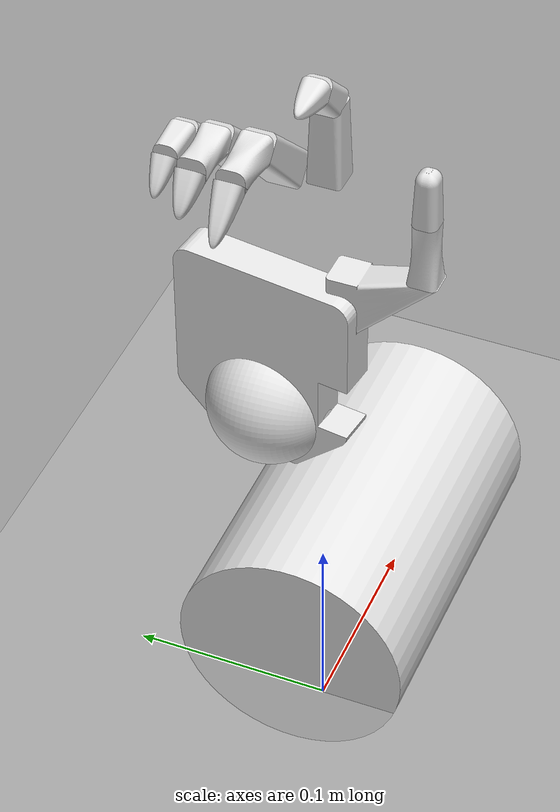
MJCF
<mujoco model="Hand_forearm">
  <compiler angle="radian" autolimits="true" meshdir="assets" />
  <option gravity="0 0 -9.81" integrator="implicitfast" />
  <default>
    <geom contype="2" conaffinity="1" />
  </default>
  <asset>
    <mesh name="fore_arm_1_0" file="fore_arm_1_0.stl" />
    <mesh name="fore_arm_1_1" file="fore_arm_1_1.stl" />
    <mesh name="wrist_1_2" file="wrist_1_2.stl" />
    <mesh name="wrist_1_3" file="wrist_1_3.stl" />
    <mesh name="human_hand_v3__Palm_1_4" file="human_hand_v3__Palm_1_4.stl" />
    <mesh name="human_hand_v3__Palm_1_5" file="human_hand_v3__Palm_1_5.stl" />
    <mesh name="Thumb_finger__Thumb_Base_1_6" file="Thumb_finger__Thumb_Base_1_6.stl" />
    <mesh name="Thumb_finger__Thumb_Base_1_7" file="Thumb_finger__Thumb_Base_1_7.stl" />
    <mesh name="Thumb_finger__Thumb_Proximal_1_8" file="Thumb_finger__Thumb_Proximal_1_8.stl" />
    <mesh name="Thumb_finger__Thumb_Proximal_1_9" file="Thumb_finger__Thumb_Proximal_1_9.stl" />
    <mesh name="Thumb_finger__Thumb_Distal_v2_1_10" file="Thumb_finger__Thumb_Distal_v2_1_10.stl" />
    <mesh name="Thumb_finger__Thumb_Distal_v2_1_11" file="Thumb_finger__Thumb_Distal_v2_1_11.stl" />
    <mesh name="index_assem__Index_Proximal_1_12" file="index_assem__Index_Proximal_1_12.stl" />
    <mesh name="index_assem__Index_Proximal_1_13" file="index_assem__Index_Proximal_1_13.stl" />
    <mesh name="index_assem__Index_Middle_1_14" file="index_assem__Index_Middle_1_14.stl" />
    <mesh name="index_assem__Index_Middle_1_15" file="index_assem__Index_Middle_1_15.stl" />
    <mesh name="index_assem__Index_Distal_1_16" file="index_assem__Index_Distal_1_16.stl" />
    <mesh name="index_assem__Index_Distal_1_17" file="index_assem__Index_Distal_1_17.stl" />
    <mesh name="Middle_Finger__Middle_Proximal_5_18" file="Middle_Finger__Middle_Proximal_5_18.stl" />
    <mesh name="Middle_Finger__Middle_Proximal_5_19" file="Middle_Finger__Middle_Proximal_5_19.stl" />
    <mesh name="Middle_Finger__Middle_Middle_4_20" file="Middle_Finger__Middle_Middle_4_20.stl" />
    <mesh name="Middle_Finger__Middle_Middle_4_21" file="Middle_Finger__Middle_Middle_4_21.stl" />
    <mesh name="Middle_Finger__Middle_Distal_4_22" file="Middle_Finger__Middle_Distal_4_22.stl" />
    <mesh name="Middle_Finger__Middle_Distal_4_23" file="Middle_Finger__Middle_Distal_4_23.stl" />
    <mesh name="Ring_finger__Ring_Proximal_1_24" file="Ring_finger__Ring_Proximal_1_24.stl" />
    <mesh name="Ring_finger__Ring_Proximal_1_25" file="Ring_finger__Ring_Proximal_1_25.stl" />
    <mesh name="Ring_finger__Ring_Middle_1_26" file="Ring_finger__Ring_Middle_1_26.stl" />
    <mesh name="Ring_finger__Ring_Middle_1_27" file="Ring_finger__Ring_Middle_1_27.stl" />
    <mesh name="Ring_finger__Ring_Distal_1_28" file="Ring_finger__Ring_Distal_1_28.stl" />
    <mesh name="Ring_finger__Ring_Distal_1_29" file="Ring_finger__Ring_Distal_1_29.stl" />
    <mesh name="Pinky_finger__Pinky_Proximal_1_30" file="Pinky_finger__Pinky_Proximal_1_30.stl" />
    <mesh name="Pinky_finger__Pinky_Proximal_1_31" file="Pinky_finger__Pinky_Proximal_1_31.stl" />
    <mesh name="Pinky_finger__Pinky_Middle_1_32" file="Pinky_finger__Pinky_Middle_1_32.stl" />
    <mesh name="Pinky_finger__Pinky_Middle_1_33" file="Pinky_finger__Pinky_Middle_1_33.stl" />
    <mesh name="Pinky_finger__Pinky_Distal_1_34" file="Pinky_finger__Pinky_Distal_1_34.stl" />
    <mesh name="Pinky_finger__Pinky_Distal_1_35" file="Pinky_finger__Pinky_Distal_1_35.stl" />
  </asset>
  <worldbody>
    <light pos="0 0 3" dir="0 0 -1" directional="true" />
    <geom name="ground" type="plane" size="5 5 0.1" contype="1" conaffinity="1" rgba="0.8 0.8 0.8 1" />
    <body name="base_link" pos="0 0 0.001" quat="0.707107 0.707107 0 0">
      <inertial pos="-0.0174187597 0.09 -0.0185985164" mass="2.03575" diaginertia="0.00366435 0.00732871 0.00732871" quat="0.707106781 0 0 -0.707106781" />
      <geom pos="0 0 0" quat="1 0 0 0" group="2" contype="0" conaffinity="0" type="mesh" mesh="fore_arm_1_0" rgba="0.894117647 0.894117647 0.894117647 1" name="base_link_visual0" />
      <geom pos="0 0 0" quat="1 0 0 0" group="3" type="mesh" mesh="fore_arm_1_1" rgba="0.4 0.4 0.4 1" name="base_link_collision0" />
      <body name="wrist_1" pos="-0.0174191077 0.209999556 -0.0185987489" quat="1 0 0 0">
        <joint name="fore_arm_1__wrist_1" pos="0 0 0" axis="0.999669 -0.0257426 0.000239032" type="hinge" range="-0.17453 0.17453" damping="0.399032" armature="0.00169474" />
        <inertial pos="3.47999681e-07 4.44016192e-07 2.32492648e-07" mass="0.113097" diaginertia="4.0715e-05 4.0715e-05 4.0715e-05" quat="0.709565028 0.704639958 0 0" />
        <geom pos="0 0 0" quat="1 0 0 0" group="2" contype="0" conaffinity="0" type="mesh" mesh="wrist_1_2" rgba="0.894117647 0.894117647 0.894117647 1" name="wrist_1_visual0" />
        <geom pos="0 0 0" quat="1 0 0 0" group="3" type="mesh" mesh="wrist_1_3" rgba="0.4 0.4 0.4 1" name="wrist_1_collision0" />
        <body name="human_hand_v3_2__Palm_1" pos="3.47999681e-07 4.44016192e-07 2.32492648e-07" quat="1 0 0 0">
          <joint name="wrist_1__human_hand_v3_2__Palm_1" pos="0 0 0" axis="0.000165001 0.0156918 0.999877" type="hinge" range="-1 1" damping="0.487904" armature="0.00253777" />
          <inertial pos="0.00221148439 0.0858546322 -0.00261542321" mass="0.146725" diaginertia="8.61669815e-05 0.000126511848 0.00020475537" quat="0.518384149 0.467397041 -0.530716045 -0.48078931" />
          <geom pos="0 0 0" quat="1 0 0 0" group="2" contype="0" conaffinity="0" type="mesh" mesh="human_hand_v3__Palm_1_4" rgba="0.894117647 0.894117647 0.894117647 1" name="human_hand_v3_2__Palm_1_visual0" />
          <geom pos="0 0 0" quat="1 0 0 0" group="3" type="mesh" mesh="human_hand_v3__Palm_1_5" rgba="0.4 0.4 0.4 1" name="human_hand_v3_2__Palm_1_collision0" />
          <body name="human_hand_v3_2__Thumb_finger_1__Thumb_Base_1" pos="0.0015137891 0.0591238369 0.0364686792" quat="1 0 0 0">
            <joint name="human_hand_v3_2__Palm_1__human_hand_v3_2__Thumb_finger_1__Thumb_Base_1" pos="0 0 0" axis="-0.0257438 -0.999625 0.00928199" type="hinge" range="0 1.5708" damping="0.00385506" ref="9.84923e-06" limited="true" armature="8.45499e-06" />
            <inertial pos="0.000446439302 0.0174336315 0.0104321523" mass="0.0158405" diaginertia="1.01048023e-06 3.10593565e-06 3.33469411e-06" quat="0.687243022 0.184377164 0.682558324 0.166781967" />
            <geom pos="0 0 0" quat="1 0 0 0" group="2" contype="0" conaffinity="0" type="mesh" mesh="Thumb_finger__Thumb_Base_1_6" rgba="0.894117647 0.894117647 0.894117647 1" name="human_hand_v3_2__Thumb_finger_1__Thumb_Base_1_visual0" />
            <geom pos="0 0 0" quat="1 0 0 0" group="3" type="mesh" mesh="Thumb_finger__Thumb_Base_1_7" rgba="0.4 0.4 0.4 1" name="human_hand_v3_2__Thumb_finger_1__Thumb_Base_1_collision0" />
            <body name="human_hand_v3_2__Thumb_finger_1__Thumb_Proximal_1" pos="0.000846862896 0.033226719 0.0351930883" quat="1 0 0 0">
              <joint name="human_hand_v3_2__Thumb_finger_1__Thumb_Base_1__human_hand_v3_2__Thumb_finger_1__Thumb_Proximal_1" pos="0 0 0" axis="7.13694e-08 0.00928777 0.999957" type="hinge" range="0 1.5708" damping="0.00202165" ref="0" limited="true" armature="5.1611e-06" />
              <joint name="human_hand_v3_2__Thumb_finger_1__Thumb_Base_1__human_hand_v3_2__Thumb_finger_1__Thumb_Proximal_1_abd" type="hinge" pos="0 0 0" axis="-0.999668 0.0257667 -0.000239254" range="-0.785398 0.785398" limited="true" damping="0.00202165" armature="5.1611e-06" /><inertial pos="0.000373741933 0.014498755 -0.000134711519" mass="0.00482838" diaginertia="1.22991385e-07 4.55145106e-07 4.64430509e-07" quat="0.00861413286 0.71609891 0.697943036 0.00191480215" />
              <geom pos="0 0 0" quat="1 0 0 0" group="2" contype="0" conaffinity="0" type="mesh" mesh="Thumb_finger__Thumb_Proximal_1_8" rgba="0.894117647 0.894117647 0.894117647 1" name="human_hand_v3_2__Thumb_finger_1__Thumb_Proximal_1_visual0" />
              <geom pos="0 0 0" quat="1 0 0 0" group="3" type="mesh" mesh="Thumb_finger__Thumb_Proximal_1_9" rgba="0.4 0.4 0.4 1" name="human_hand_v3_2__Thumb_finger_1__Thumb_Proximal_1_collision0" />
              <body name="human_hand_v3_2__Thumb_finger_1__Thumb_Distal_v2_1" pos="0.000798394544 0.0309879312 -0.00028782122" quat="1 0 0 0">
                <joint name="human_hand_v3_2__Thumb_finger_1__Thumb_Proximal_1__human_hand_v3_2__Thumb_finger_1__Thumb_Distal_v2_1" pos="0 0 0" axis="0 0.00928507 0.999957" type="hinge" range="0 1.5708" damping="0.000266238" ref="0" limited="true" armature="4.43016e-07" />
                <inertial pos="0.000309621997 0.0120225614 -0.000111635182" mass="0.00306267" diaginertia="5.86965857e-08 1.93958643e-07 1.98802071e-07" quat="0.697938148 -0.003240031 -0.00332503317 -0.716142994" />
                <geom pos="0 0 0" quat="1 0 0 0" group="2" contype="0" conaffinity="0" type="mesh" mesh="Thumb_finger__Thumb_Distal_v2_1_10" rgba="0.894117647 0.894117647 0.894117647 1" name="human_hand_v3_2__Thumb_finger_1__Thumb_Distal_v2_1_visual0" />
                <geom pos="0 0 0" quat="1 0 0 0" group="3" type="mesh" mesh="Thumb_finger__Thumb_Distal_v2_1_11" rgba="0.4 0.4 0.4 1" name="human_hand_v3_2__Thumb_finger_1__Thumb_Distal_v2_1_collision0" />
              </body>
            </body>
          </body>
          <body name="human_hand_v3_2__index_assem_2__Index_Proximal_1" pos="0.00344966462 0.134209946 0.0267710813" quat="1 0 0 0">
            <joint name="human_hand_v3_2__Palm_1__human_hand_v3_2__index_assem_2__Index_Proximal_1" pos="0 0 0" axis="-0 0.00928507 0.999957" type="hinge" range="0 1.5708" damping="0.00509945" ref="0" limited="true" armature="1.46717e-05" />
            <inertial pos="0.000477534758 0.0185428323 -0.000172178664" mass="0.00857536" diaginertia="3.11850784e-07 1.23617256e-06 1.23617965e-06" quat="0.0202204562 0.715865178 0.697820325 0.0132277284" />
            <geom pos="0 0 0" quat="1 0 0 0" group="2" contype="0" conaffinity="0" type="mesh" mesh="index_assem__Index_Proximal_1_12" rgba="0.894117647 0.894117647 0.894117647 1" name="human_hand_v3_2__index_assem_2__Index_Proximal_1_visual0" />
            <geom pos="0 0 0" quat="1 0 0 0" group="3" type="mesh" mesh="index_assem__Index_Proximal_1_13" rgba="0.4 0.4 0.4 1" name="human_hand_v3_2__index_assem_2__Index_Proximal_1_collision0" />
            <body name="human_hand_v3_2__index_assem_2__Index_Middle_1" pos="0.00100400687 0.0389853938 -0.00036199778" quat="1 0 0 0">
              <joint name="human_hand_v3_2__index_assem_2__Index_Proximal_1__human_hand_v3_2__index_assem_2__Index_Middle_1" pos="0 0 0" axis="0 0.00928507 0.999957" type="hinge" range="0 1.5708" damping="0.000669185" ref="0.785398" limited="true" armature="1.34686e-06" />
              <inertial pos="-0.00733273797 0.00772005786 -7.16843807e-05" mass="0.0037779" diaginertia="1.05473373e-07 2.04659131e-07 2.04659496e-07" quat="0.918771743 0.0138653206 -0.00961617536 -0.394428405" />
              <geom pos="0 0 0" quat="1 0 0 0" group="2" contype="0" conaffinity="0" type="mesh" mesh="index_assem__Index_Middle_1_14" rgba="0.894117647 0.894117647 0.894117647 1" name="human_hand_v3_2__index_assem_2__Index_Middle_1_visual0" />
              <geom pos="0 0 0" quat="1 0 0 0" group="3" type="mesh" mesh="index_assem__Index_Middle_1_15" rgba="0.4 0.4 0.4 1" name="human_hand_v3_2__index_assem_2__Index_Middle_1_collision0" />
              <body name="human_hand_v3_2__index_assem_2__Index_Distal_1" pos="-0.0151507144 0.0159509848 -0.000148112422" quat="1 0 0 0">
                <joint name="human_hand_v3_2__index_assem_2__Index_Middle_1__human_hand_v3_2__index_assem_2__Index_Distal_1" pos="0 0 0" axis="0 0.00928507 0.999957" type="hinge" range="0 1.5708" damping="0.000105071" ref="0.785356" limited="true" armature="6.89998e-08" />
                <inertial pos="-0.00666445966 0.00017190269 -1.50476925e-06" mass="0.00155249" diaginertia="2.58713232e-08 4.7438446e-08 4.74399307e-08" quat="0.997414066 -0.0707082911 0.0007927474 -0.0128409907" />
                <geom pos="0 0 0" quat="1 0 0 0" group="2" contype="0" conaffinity="0" type="mesh" mesh="index_assem__Index_Distal_1_16" rgba="0.894117647 0.894117647 0.894117647 1" name="human_hand_v3_2__index_assem_2__Index_Distal_1_visual0" />
                <geom pos="0 0 0" quat="1 0 0 0" group="3" type="mesh" mesh="index_assem__Index_Distal_1_17" rgba="0.4 0.4 0.4 1" name="human_hand_v3_2__index_assem_2__Index_Distal_1_collision0" />
              </body>
            </body>
          </body>
          <body name="human_hand_v3_2__Middle_Finger_1__Middle_Proximal_5" pos="0.00344966462 0.134028887 0.0072719219" quat="1 0 0 0">
            <joint name="human_hand_v3_2__Palm_1__human_hand_v3_2__Middle_Finger_1__Middle_Proximal_5" pos="0 0 0" axis="-0 0.00928507 0.999957" type="hinge" range="0 1.5708" damping="0.0082076" ref="0.785398" limited="true" armature="2.54171e-05" />
            <inertial pos="-0.0147921096 0.0155734276 -0.000144606955" mass="0.0112897" diaginertia="4.68649039e-07 2.1293349e-06 2.12933606e-06" quat="0.350315552 0.181506149 0.430276883 0.811909069" />
            <geom pos="0 0 0" quat="1 0 0 0" group="2" contype="0" conaffinity="0" type="mesh" mesh="Middle_Finger__Middle_Proximal_5_18" rgba="0.894117647 0.894117647 0.894117647 1" name="human_hand_v3_2__Middle_Finger_1__Middle_Proximal_5_visual0" />
            <geom pos="0 0 0" quat="1 0 0 0" group="3" type="mesh" mesh="Middle_Finger__Middle_Proximal_5_19" rgba="0.4 0.4 0.4 1" name="human_hand_v3_2__Middle_Finger_1__Middle_Proximal_5_collision0" />
            <body name="human_hand_v3_2__Middle_Finger_1__Middle_Middle_4" pos="-0.0309900976 0.0326270143 -0.000302957226" quat="1 0 0 0">
              <joint name="human_hand_v3_2__Middle_Finger_1__Middle_Proximal_5__human_hand_v3_2__Middle_Finger_1__Middle_Middle_4" pos="0 0 0" axis="0 0.00928507 0.999957" type="hinge" range="0 1.5708" damping="0.0011812" ref="0.785398" limited="true" armature="2.66775e-06" />
              <inertial pos="-0.0126703486 0.000326276219 -3.02974891e-06" mass="0.00456309" diaginertia="1.25674477e-07 3.4826851e-07 3.48270013e-07" quat="0.999878871 0.00874812494 -0.00023212437 -0.0128708957" />
              <geom pos="0 0 0" quat="1 0 0 0" group="2" contype="0" conaffinity="0" type="mesh" mesh="Middle_Finger__Middle_Middle_4_20" rgba="0.894117647 0.894117647 0.894117647 1" name="human_hand_v3_2__Middle_Finger_1__Middle_Middle_4_visual0" />
              <geom pos="0 0 0" quat="1 0 0 0" group="3" type="mesh" mesh="Middle_Finger__Middle_Middle_4_21" rgba="0.4 0.4 0.4 1" name="human_hand_v3_2__Middle_Finger_1__Middle_Middle_4_collision0" />
              <body name="human_hand_v3_2__Middle_Finger_1__Middle_Distal_4" pos="-0.0269910515 0.000695051715 -6.4538832e-06" quat="1 0 0 0">
                <joint name="human_hand_v3_2__Middle_Finger_1__Middle_Middle_4__human_hand_v3_2__Middle_Finger_1__Middle_Distal_4" pos="0 0 0" axis="0 0.00928507 0.999957" type="hinge" range="0 1.5708" damping="0.000164801" ref="0.785407" limited="true" armature="1.69746e-07" />
                <inertial pos="-0.00652539237 -0.00619757999 5.78687614e-05" mass="0.00209578" diaginertia="3.4925756e-08 1.02342655e-07 1.02343889e-07" quat="0.558637004 -0.741931254 -0.294107599 0.225750817" />
                <geom pos="0 0 0" quat="1 0 0 0" group="2" contype="0" conaffinity="0" type="mesh" mesh="Middle_Finger__Middle_Distal_4_22" rgba="0.894117647 0.894117647 0.894117647 1" name="human_hand_v3_2__Middle_Finger_1__Middle_Distal_4_visual0" />
                <geom pos="0 0 0" quat="1 0 0 0" group="3" type="mesh" mesh="Middle_Finger__Middle_Distal_4_23" rgba="0.4 0.4 0.4 1" name="human_hand_v3_2__Middle_Finger_1__Middle_Distal_4_collision0" />
              </body>
            </body>
          </body>
          <body name="human_hand_v3_2__Ring_finger_1__Ring_Proximal_1" pos="0.003449652 0.133847556 -0.0122272325" quat="1 0 0 0">
            <joint name="human_hand_v3_2__Palm_1__human_hand_v3_2__Ring_finger_1__Ring_Proximal_1" pos="0 0 0" axis="-0 0.009285 0.999957" type="hinge" range="0 1.5708" damping="0.00574355" ref="0.785388" limited="true" armature="1.69685e-05" />
            <inertial pos="-0.0134297531 0.0141394065 -0.000131293396" mass="0.00901512" diaginertia="3.27843097e-07 1.41903445e-06 1.41903946e-06" quat="0.918875744 -0.0013157 -0.00309844177 -0.394532681" />
            <geom pos="0 0 0" quat="1 0 0 0" group="2" contype="0" conaffinity="0" type="mesh" mesh="Ring_finger__Ring_Proximal_1_24" rgba="0.894117647 0.894117647 0.894117647 1" name="human_hand_v3_2__Ring_finger_1__Ring_Proximal_1_visual0" />
            <geom pos="0 0 0" quat="1 0 0 0" group="3" type="mesh" mesh="Ring_finger__Ring_Proximal_1_25" rgba="0.4 0.4 0.4 1" name="human_hand_v3_2__Ring_finger_1__Ring_Proximal_1_collision0" />
            <body name="human_hand_v3_2__Ring_finger_1__Ring_Middle_1" pos="-0.028235 0.029727 -0.000276" quat="1 0 0 0">
              <joint name="human_hand_v3_2__Ring_finger_1__Ring_Proximal_1__human_hand_v3_2__Ring_finger_1__Ring_Middle_1" pos="0 0 0" axis="-0 0.009285 0.999957" type="hinge" range="0 1.5708" damping="0.000800206" ref="0.785391" limited="true" armature="1.69685e-06" />
              <inertial pos="-0.0120553535 0.00031053637 -2.91517597e-06" mass="0.00389782" diaginertia="9.81451082e-08 2.59583979e-07 2.59584013e-07" quat="0.986475757 0.163400945 -0.0022214553 -0.0126797998" />
              <geom pos="0 0 0" quat="1 0 0 0" group="2" contype="0" conaffinity="0" type="mesh" mesh="Ring_finger__Ring_Middle_1_26" rgba="0.894117647 0.894117647 0.894117647 1" name="human_hand_v3_2__Ring_finger_1__Ring_Middle_1_visual0" />
              <geom pos="0 0 0" quat="1 0 0 0" group="3" type="mesh" mesh="Ring_finger__Ring_Middle_1_27" rgba="0.4 0.4 0.4 1" name="human_hand_v3_2__Ring_finger_1__Ring_Middle_1_collision0" />
              <body name="human_hand_v3_2__Ring_finger_1__Ring_Distal_1" pos="-0.024992 0.000644 -6e-06" quat="1 0 0 0">
                <joint name="human_hand_v3_2__Ring_finger_1__Ring_Middle_1__human_hand_v3_2__Ring_finger_1__Ring_Distal_1" pos="0 0 0" axis="-0 0.009285 0.999957" type="hinge" range="0 1.5708" damping="0.000105076" ref="0.78548" limited="true" armature="6.90062e-08" />
                <inertial pos="-0.00483377421 -0.00459146544 4.25308403e-05" mass="0.00155249" diaginertia="2.58713384e-08 4.74384518e-08 4.74399097e-08" quat="0.926318667 -0.0669036647 -0.0232758093 0.370021437" />
                <geom pos="0 0 0" quat="1 0 0 0" group="2" contype="0" conaffinity="0" type="mesh" mesh="Ring_finger__Ring_Distal_1_28" rgba="0.894117647 0.894117647 0.894117647 1" name="human_hand_v3_2__Ring_finger_1__Ring_Distal_1_visual0" />
                <geom pos="0 0 0" quat="1 0 0 0" group="3" type="mesh" mesh="Ring_finger__Ring_Distal_1_29" rgba="0.4 0.4 0.4 1" name="human_hand_v3_2__Ring_finger_1__Ring_Distal_1_collision0" />
              </body>
            </body>
          </body>
          <body name="human_hand_v3_2__Pinky_finger_1__Pinky_Proximal_1" pos="0.003449652 0.133680556 -0.0302262325" quat="1 0 0 0">
            <joint name="human_hand_v3_2__Palm_1__human_hand_v3_2__Pinky_finger_1__Pinky_Proximal_1" pos="0 0 0" axis="-0 0.009285 0.999957" type="hinge" range="0 1.5708" damping="0.00226384" ref="0.785377" limited="true" armature="5.87773e-06" />
            <inertial pos="-0.0103879211 0.0109367716 -0.000101805183" mass="0.00524416" diaginertia="1.42028037e-07 5.14706065e-07 5.14708898e-07" quat="0.918861153 -0.00534850109 -0.00136756087 -0.394542399" />
            <geom pos="0 0 0" quat="1 0 0 0" group="2" contype="0" conaffinity="0" type="mesh" mesh="Pinky_finger__Pinky_Proximal_1_30" rgba="0.894117647 0.894117647 0.894117647 1" name="human_hand_v3_2__Pinky_finger_1__Pinky_Proximal_1_visual0" />
            <geom pos="0 0 0" quat="1 0 0 0" group="3" type="mesh" mesh="Pinky_finger__Pinky_Proximal_1_31" rgba="0.4 0.4 0.4 1" name="human_hand_v3_2__Pinky_finger_1__Pinky_Proximal_1_collision0" />
            <body name="human_hand_v3_2__Pinky_finger_1__Pinky_Middle_1" pos="-0.022037 0.023202 -0.000216" quat="1 0 0 0">
              <joint name="human_hand_v3_2__Pinky_finger_1__Pinky_Proximal_1__human_hand_v3_2__Pinky_finger_1__Pinky_Middle_1" pos="0 0 0" axis="-0 0.009285 0.999957" type="hinge" range="0 1.5708" damping="0.000304596" ref="0.78544" limited="true" armature="5.61595e-07" />
              <inertial pos="-0.00864011152 0.000222056272 -1.73112356e-06" mass="0.00219107" diaginertia="4.31908854e-08 8.04825124e-08 8.04829022e-08" quat="0.999881005 0.00850073781 -0.00022895224 -0.012870895" />
              <geom pos="0 0 0" quat="1 0 0 0" group="2" contype="0" conaffinity="0" type="mesh" mesh="Pinky_finger__Pinky_Middle_1_32" rgba="0.894117647 0.894117647 0.894117647 1" name="human_hand_v3_2__Pinky_finger_1__Pinky_Middle_1_visual0" />
              <geom pos="0 0 0" quat="1 0 0 0" group="3" type="mesh" mesh="Pinky_finger__Pinky_Middle_1_33" rgba="0.4 0.4 0.4 1" name="human_hand_v3_2__Pinky_finger_1__Pinky_Middle_1_collision0" />
              <body name="human_hand_v3_2__Pinky_finger_1__Pinky_Distal_1" pos="-0.017994 0.000463 -4e-06" quat="1 0 0 0">
                <joint name="human_hand_v3_2__Pinky_finger_1__Pinky_Middle_1__human_hand_v3_2__Pinky_finger_1__Pinky_Distal_1" pos="0 0 0" axis="-0 0.009285 0.999957" type="hinge" range="0 1.5708" damping="7.45611e-05" ref="0.785336" limited="true" armature="3.4746e-08" />
                <inertial pos="-0.0043506102 -0.00413163501 3.87522226e-05" mass="0.000965173" diaginertia="1.10480684e-08 2.2896544e-08 2.28979876e-08" quat="0.928702712 0.0069854369 0.00624033936 0.370706803" />
                <geom pos="0 0 0" quat="1 0 0 0" group="2" contype="0" conaffinity="0" type="mesh" mesh="Pinky_finger__Pinky_Distal_1_34" rgba="0.894117647 0.894117647 0.894117647 1" name="human_hand_v3_2__Pinky_finger_1__Pinky_Distal_1_visual0" />
                <geom pos="0 0 0" quat="1 0 0 0" group="3" type="mesh" mesh="Pinky_finger__Pinky_Distal_1_35" rgba="0.4 0.4 0.4 1" name="human_hand_v3_2__Pinky_finger_1__Pinky_Distal_1_collision0" />
              </body>
            </body>
          </body>
        </body>
      </body>
    </body>
  </worldbody>
  <actuator><position name="act_fore_arm_1__wrist_1" joint="fore_arm_1__wrist_1" kp="11.7442" ctrllimited="true" ctrlrange="-0.17453 0.17453" forcelimited="true" forcerange="-5.87211 5.87211" /><position name="act_wrist_1__human_hand_v3_2__Palm_1" joint="wrist_1__human_hand_v3_2__Palm_1" kp="11.7254" ctrllimited="true" ctrlrange="-1 1" forcelimited="true" forcerange="-5.86269 5.86269" /><position name="act_human_hand_v3_2__Palm_1__human_hand_v3_2__Thumb_finger_1__Thumb_Base_1" joint="human_hand_v3_2__Palm_1__human_hand_v3_2__Thumb_finger_1__Thumb_Base_1" kp="0.219714" ctrllimited="true" ctrlrange="0 1.5708" forcelimited="true" forcerange="-0.109857 0.109857" /><position name="act_human_hand_v3_2__Thumb_finger_1__Thumb_Base_1__human_hand_v3_2__Thumb_finger_1__Thumb_Proximal_1" joint="human_hand_v3_2__Thumb_finger_1__Thumb_Base_1__human_hand_v3_2__Thumb_finger_1__Thumb_Proximal_1" kp="0.0989869" ctrllimited="true" ctrlrange="0 1.5708" forcelimited="true" forcerange="-0.0494934 0.0494934" /><position name="act_human_hand_v3_2__Thumb_finger_1__Thumb_Base_1__human_hand_v3_2__Thumb_finger_1__Thumb_Proximal_1_abd" joint="human_hand_v3_2__Thumb_finger_1__Thumb_Base_1__human_hand_v3_2__Thumb_finger_1__Thumb_Proximal_1_abd" kp="0.0989869" ctrllimited="true" ctrlrange="-0.785398 0.785398" forcelimited="true" forcerange="-0.0494934 0.0494934" /><position name="act_human_hand_v3_2__Thumb_finger_1__Thumb_Proximal_1__human_hand_v3_2__Thumb_finger_1__Thumb_Distal_v2_1" joint="human_hand_v3_2__Thumb_finger_1__Thumb_Proximal_1__human_hand_v3_2__Thumb_finger_1__Thumb_Distal_v2_1" kp="0.02" ctrllimited="true" ctrlrange="0 1.5708" forcelimited="true" forcerange="-0.01 0.01" /><position name="act_human_hand_v3_2__Palm_1__human_hand_v3_2__index_assem_2__Index_Proximal_1" joint="human_hand_v3_2__Palm_1__human_hand_v3_2__index_assem_2__Index_Proximal_1" kp="0.221552" ctrllimited="true" ctrlrange="0 1.5708" forcelimited="true" forcerange="-0.110776 0.110776" /><position name="act_human_hand_v3_2__index_assem_2__Index_Proximal_1__human_hand_v3_2__index_assem_2__Index_Middle_1" joint="human_hand_v3_2__index_assem_2__Index_Proximal_1__human_hand_v3_2__index_assem_2__Index_Middle_1" kp="0.0415604" ctrllimited="true" ctrlrange="0 1.5708" forcelimited="true" forcerange="-0.0207802 0.0207802" /><position name="act_human_hand_v3_2__index_assem_2__Index_Middle_1__human_hand_v3_2__index_assem_2__Index_Distal_1" joint="human_hand_v3_2__index_assem_2__Index_Middle_1__human_hand_v3_2__index_assem_2__Index_Distal_1" kp="0.02" ctrllimited="true" ctrlrange="0 1.5708" forcelimited="true" forcerange="-0.01 0.01" /><position name="act_human_hand_v3_2__Palm_1__human_hand_v3_2__Middle_Finger_1__Middle_Proximal_5" joint="human_hand_v3_2__Palm_1__human_hand_v3_2__Middle_Finger_1__Middle_Proximal_5" kp="0.331297" ctrllimited="true" ctrlrange="0 1.5708" forcelimited="true" forcerange="-0.165648 0.165648" /><position name="act_human_hand_v3_2__Middle_Finger_1__Middle_Proximal_5__human_hand_v3_2__Middle_Finger_1__Middle_Middle_4" joint="human_hand_v3_2__Middle_Finger_1__Middle_Proximal_5__human_hand_v3_2__Middle_Finger_1__Middle_Middle_4" kp="0.0653751" ctrllimited="true" ctrlrange="0 1.5708" forcelimited="true" forcerange="-0.0326875 0.0326875" /><position name="act_human_hand_v3_2__Middle_Finger_1__Middle_Middle_4__human_hand_v3_2__Middle_Finger_1__Middle_Distal_4" joint="human_hand_v3_2__Middle_Finger_1__Middle_Middle_4__human_hand_v3_2__Middle_Finger_1__Middle_Distal_4" kp="0.02" ctrllimited="true" ctrlrange="0 1.5708" forcelimited="true" forcerange="-0.01 0.01" /><position name="act_human_hand_v3_2__Palm_1__human_hand_v3_2__Ring_finger_1__Ring_Proximal_1" joint="human_hand_v3_2__Palm_1__human_hand_v3_2__Ring_finger_1__Ring_Proximal_1" kp="0.243011" ctrllimited="true" ctrlrange="0 1.5708" forcelimited="true" forcerange="-0.121506 0.121506" /><position name="act_human_hand_v3_2__Ring_finger_1__Ring_Proximal_1__human_hand_v3_2__Ring_finger_1__Ring_Middle_1" joint="human_hand_v3_2__Ring_finger_1__Ring_Proximal_1__human_hand_v3_2__Ring_finger_1__Ring_Middle_1" kp="0.0471706" ctrllimited="true" ctrlrange="0 1.5708" forcelimited="true" forcerange="-0.0235853 0.0235853" /><position name="act_human_hand_v3_2__Ring_finger_1__Ring_Middle_1__human_hand_v3_2__Ring_finger_1__Ring_Distal_1" joint="human_hand_v3_2__Ring_finger_1__Ring_Middle_1__human_hand_v3_2__Ring_finger_1__Ring_Distal_1" kp="0.02" ctrllimited="true" ctrlrange="0 1.5708" forcelimited="true" forcerange="-0.01 0.01" /><position name="act_human_hand_v3_2__Palm_1__human_hand_v3_2__Pinky_finger_1__Pinky_Proximal_1" joint="human_hand_v3_2__Palm_1__human_hand_v3_2__Pinky_finger_1__Pinky_Proximal_1" kp="0.108992" ctrllimited="true" ctrlrange="0 1.5708" forcelimited="true" forcerange="-0.0544959 0.0544959" /><position name="act_human_hand_v3_2__Pinky_finger_1__Pinky_Proximal_1__human_hand_v3_2__Pinky_finger_1__Pinky_Middle_1" joint="human_hand_v3_2__Pinky_finger_1__Pinky_Proximal_1__human_hand_v3_2__Pinky_finger_1__Pinky_Middle_1" kp="0.0206508" ctrllimited="true" ctrlrange="0 1.5708" forcelimited="true" forcerange="-0.0103254 0.0103254" /><position name="act_human_hand_v3_2__Pinky_finger_1__Pinky_Middle_1__human_hand_v3_2__Pinky_finger_1__Pinky_Distal_1" joint="human_hand_v3_2__Pinky_finger_1__Pinky_Middle_1__human_hand_v3_2__Pinky_finger_1__Pinky_Distal_1" kp="0.02" ctrllimited="true" ctrlrange="0 1.5708" forcelimited="true" forcerange="-0.01 0.01" /></actuator><sensor><jointpos name="q_fore_arm_1__wrist_1" joint="fore_arm_1__wrist_1" /><jointpos name="q_wrist_1__human_hand_v3_2__Palm_1" joint="wrist_1__human_hand_v3_2__Palm_1" /><jointpos name="q_human_hand_v3_2__Palm_1__human_hand_v3_2__Thumb_finger_1__Thumb_Base_1" joint="human_hand_v3_2__Palm_1__human_hand_v3_2__Thumb_finger_1__Thumb_Base_1" /><jointpos name="q_human_hand_v3_2__Thumb_finger_1__Thumb_Base_1__human_hand_v3_2__Thumb_finger_1__Thumb_Proximal_1" joint="human_hand_v3_2__Thumb_finger_1__Thumb_Base_1__human_hand_v3_2__Thumb_finger_1__Thumb_Proximal_1" /><jointpos name="q_human_hand_v3_2__Thumb_finger_1__Thumb_Base_1__human_hand_v3_2__Thumb_finger_1__Thumb_Proximal_1_abd" joint="human_hand_v3_2__Thumb_finger_1__Thumb_Base_1__human_hand_v3_2__Thumb_finger_1__Thumb_Proximal_1_abd" /><jointpos name="q_human_hand_v3_2__Thumb_finger_1__Thumb_Proximal_1__human_hand_v3_2__Thumb_finger_1__Thumb_Distal_v2_1" joint="human_hand_v3_2__Thumb_finger_1__Thumb_Proximal_1__human_hand_v3_2__Thumb_finger_1__Thumb_Distal_v2_1" /><jointpos name="q_human_hand_v3_2__Palm_1__human_hand_v3_2__index_assem_2__Index_Proximal_1" joint="human_hand_v3_2__Palm_1__human_hand_v3_2__index_assem_2__Index_Proximal_1" /><jointpos name="q_human_hand_v3_2__index_assem_2__Index_Proximal_1__human_hand_v3_2__index_assem_2__Index_Middle_1" joint="human_hand_v3_2__index_assem_2__Index_Proximal_1__human_hand_v3_2__index_assem_2__Index_Middle_1" /><jointpos name="q_human_hand_v3_2__index_assem_2__Index_Middle_1__human_hand_v3_2__index_assem_2__Index_Distal_1" joint="human_hand_v3_2__index_assem_2__Index_Middle_1__human_hand_v3_2__index_assem_2__Index_Distal_1" /><jointpos name="q_human_hand_v3_2__Palm_1__human_hand_v3_2__Middle_Finger_1__Middle_Proximal_5" joint="human_hand_v3_2__Palm_1__human_hand_v3_2__Middle_Finger_1__Middle_Proximal_5" /><jointpos name="q_human_hand_v3_2__Middle_Finger_1__Middle_Proximal_5__human_hand_v3_2__Middle_Finger_1__Middle_Middle_4" joint="human_hand_v3_2__Middle_Finger_1__Middle_Proximal_5__human_hand_v3_2__Middle_Finger_1__Middle_Middle_4" /><jointpos name="q_human_hand_v3_2__Middle_Finger_1__Middle_Middle_4__human_hand_v3_2__Middle_Finger_1__Middle_Distal_4" joint="human_hand_v3_2__Middle_Finger_1__Middle_Middle_4__human_hand_v3_2__Middle_Finger_1__Middle_Distal_4" /><jointpos name="q_human_hand_v3_2__Palm_1__human_hand_v3_2__Ring_finger_1__Ring_Proximal_1" joint="human_hand_v3_2__Palm_1__human_hand_v3_2__Ring_finger_1__Ring_Proximal_1" /><jointpos name="q_human_hand_v3_2__Ring_finger_1__Ring_Proximal_1__human_hand_v3_2__Ring_finger_1__Ring_Middle_1" joint="human_hand_v3_2__Ring_finger_1__Ring_Proximal_1__human_hand_v3_2__Ring_finger_1__Ring_Middle_1" /><jointpos name="q_human_hand_v3_2__Ring_finger_1__Ring_Middle_1__human_hand_v3_2__Ring_finger_1__Ring_Distal_1" joint="human_hand_v3_2__Ring_finger_1__Ring_Middle_1__human_hand_v3_2__Ring_finger_1__Ring_Distal_1" /><jointpos name="q_human_hand_v3_2__Palm_1__human_hand_v3_2__Pinky_finger_1__Pinky_Proximal_1" joint="human_hand_v3_2__Palm_1__human_hand_v3_2__Pinky_finger_1__Pinky_Proximal_1" /><jointpos name="q_human_hand_v3_2__Pinky_finger_1__Pinky_Proximal_1__human_hand_v3_2__Pinky_finger_1__Pinky_Middle_1" joint="human_hand_v3_2__Pinky_finger_1__Pinky_Proximal_1__human_hand_v3_2__Pinky_finger_1__Pinky_Middle_1" /><jointpos name="q_human_hand_v3_2__Pinky_finger_1__Pinky_Middle_1__human_hand_v3_2__Pinky_finger_1__Pinky_Distal_1" joint="human_hand_v3_2__Pinky_finger_1__Pinky_Middle_1__human_hand_v3_2__Pinky_finger_1__Pinky_Distal_1" /></sensor></mujoco>
